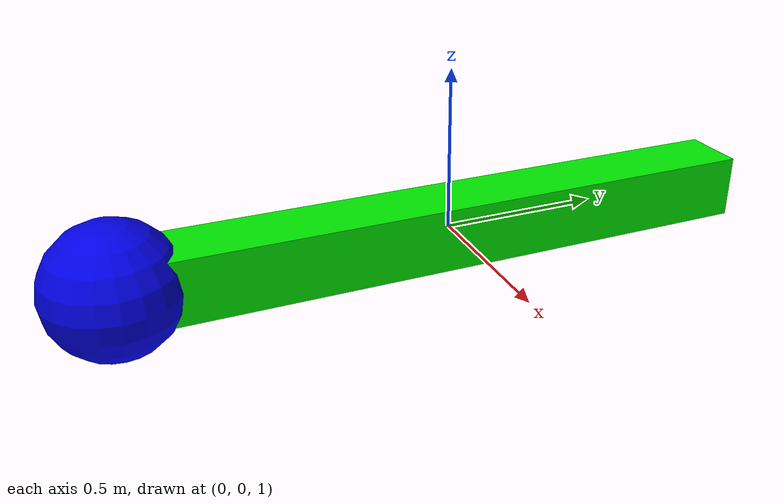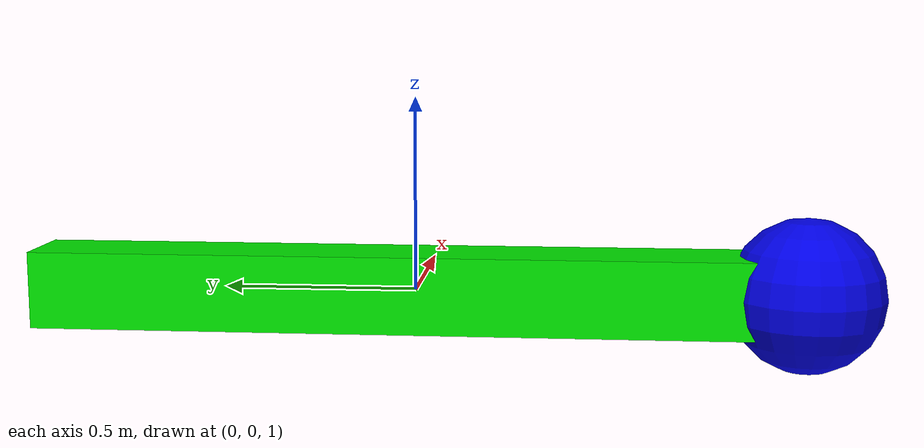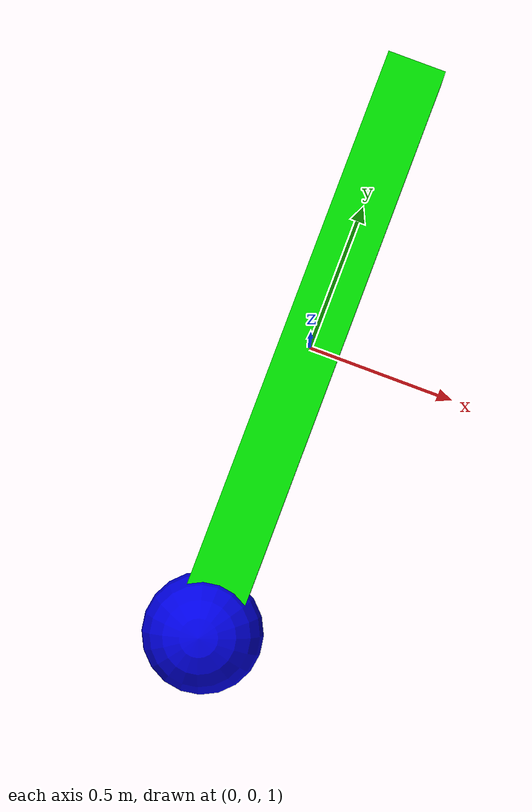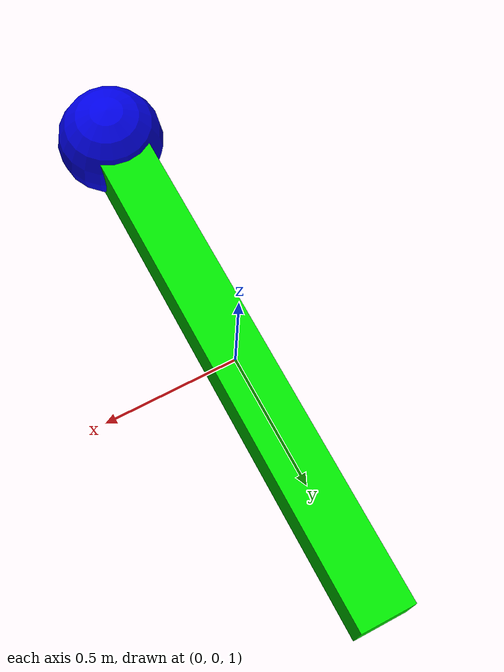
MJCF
<mujoco>
   <worldbody>
      <body pos="0 0 1">
         <joint type="hinge" pos="0 -1 0" axis="1 0 0"/>
         <geom pos="0 -1 0" type="sphere" size=".2" rgba="0 0 .9 1"/>
         <geom type="box" size=".1 1 .1" rgba="0 .9 0 1"/>
      </body>
   </worldbody>
</mujoco>
